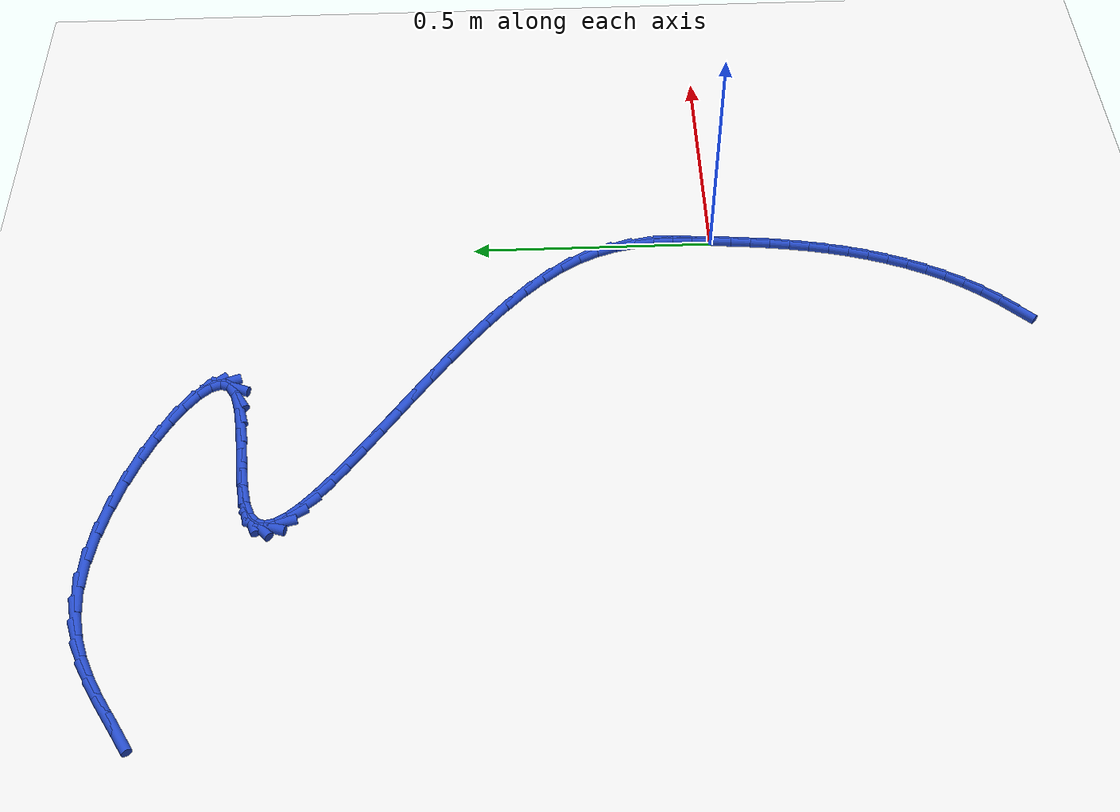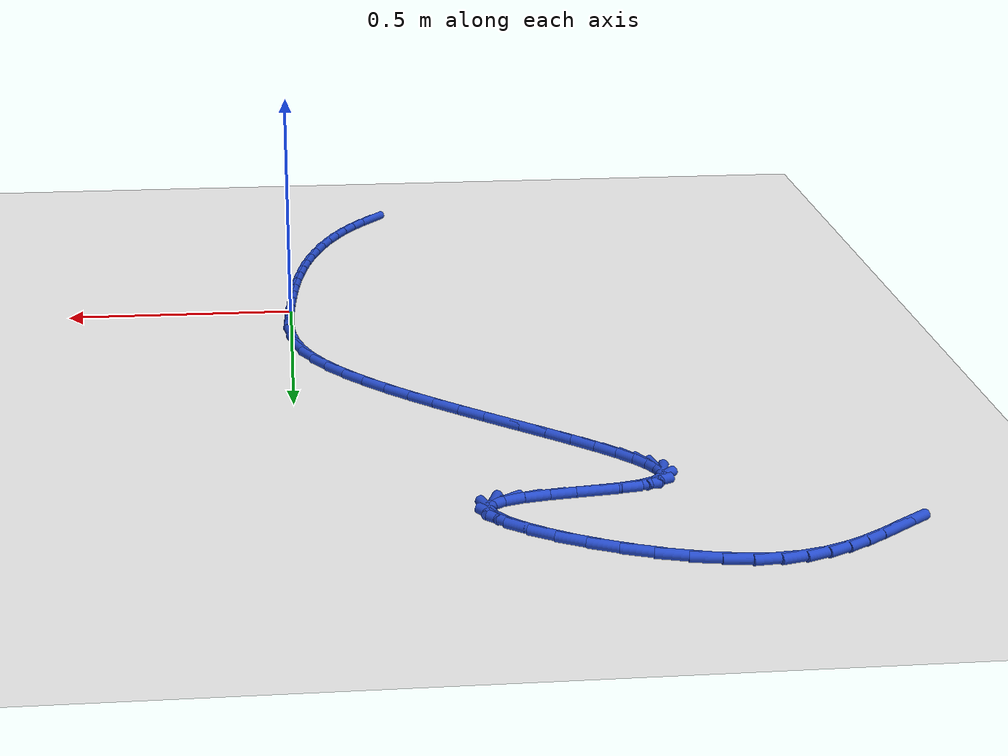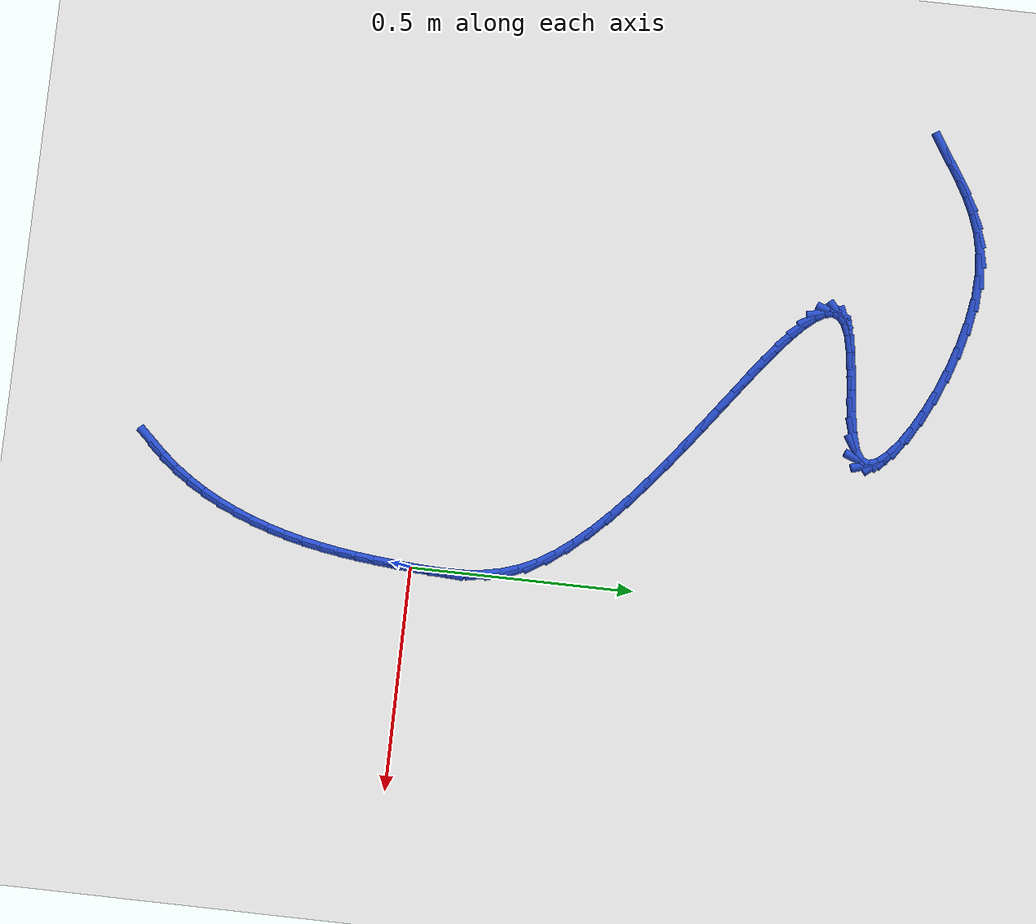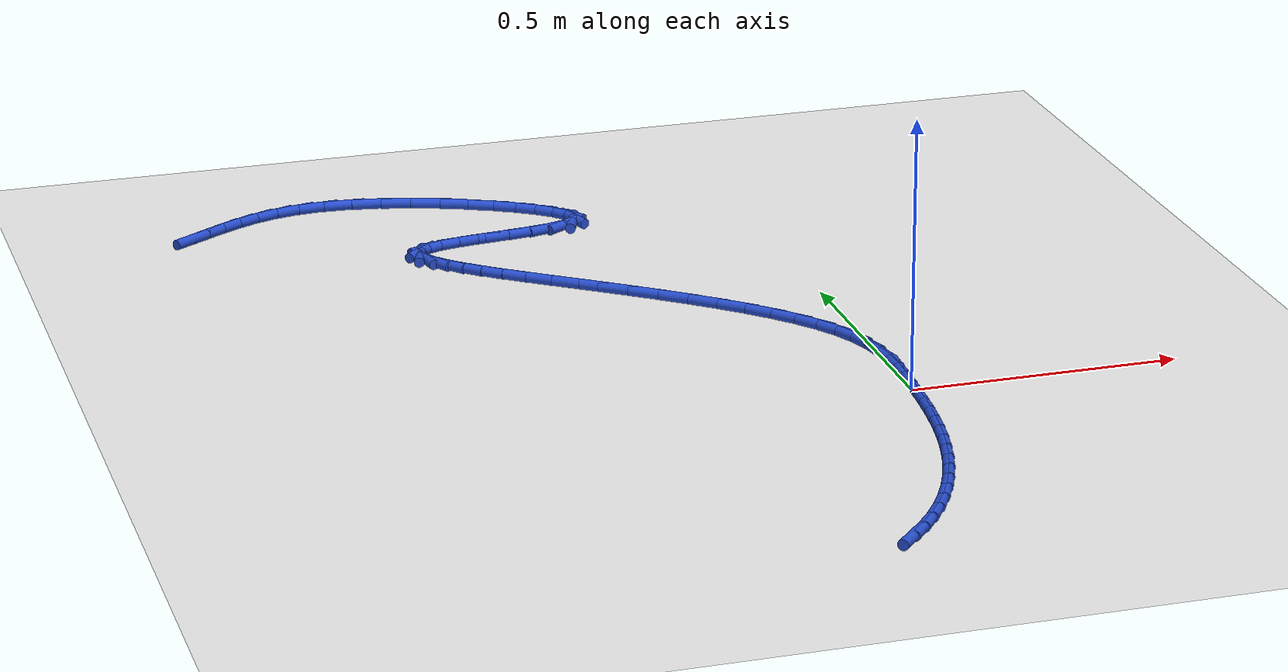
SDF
<sdf version="1.6">
 <world name="default">
  <model name="ground_plane">
   <static>1</static>
   <link name="link">
    <collision name="collision">
     <geometry><plane><normal>0 0 1</normal><size>100 100</size></plane></geometry>
     <surface><friction><ode><mu>100</mu><mu2>50</mu2></ode></friction></surface>
    </collision>
    <visual name="visual">
     <cast_shadows>0</cast_shadows>
     <geometry><plane><normal>0 0 1</normal><size>100 100</size></plane></geometry>
     <material>
      <script><uri>file://media/materials/scripts/gazebo.material</uri><name>Gazebo/WhiteGlow</name></script>
     </material>
    </visual>
   </link>
  </model>
  <model name="line">
   <link name="link_0">
    <pose>-2.6454533008646308e-17 4.85722573273506e-17 0.01 0 1.57 1.509269195185731</pose>
    <collision name="collision">
     <geometry><cylinder><radius>0.01</radius><length>0.08</length></cylinder></geometry>
    </collision>
    <visual name="visual">
     <material>
      <script><name>Gazebo/Blue</name><uri>file://media/materials/scripts/gazebo.material</uri></script>
     </material>
     <geometry><cylinder><radius>0.01</radius><length>0.08</length></cylinder></geometry>
    </visual>
   </link>
   <link name="link_1">
    <pose>0.0025201213532394574 0.04090781477339782 0.01 0 1.57 1.5417251489490051</pose>
    <collision name="collision">
     <geometry><cylinder><radius>0.01</radius><length>0.08</length></cylinder></geometry>
    </collision>
    <visual name="visual">
     <material>
      <script><name>Gazebo/Blue</name><uri>file://media/materials/scripts/gazebo.material</uri></script>
     </material>
     <geometry><cylinder><radius>0.01</radius><length>0.08</length></cylinder></geometry>
    </visual>
   </link>
   <link name="link_2">
    <pose>0.00370807624145367 0.08175996791085728 0.01 0 1.57 -1.5446514620259824</pose>
    <collision name="collision">
     <geometry><cylinder><radius>0.01</radius><length>0.08</length></cylinder></geometry>
    </collision>
    <visual name="visual">
     <material>
      <script><name>Gazebo/Blue</name><uri>file://media/materials/scripts/gazebo.material</uri></script>
     </material>
     <geometry><cylinder><radius>0.01</radius><length>0.08</length></cylinder></geometry>
    </visual>
   </link>
   <link name="link_3">
    <pose>0.002640877953900527 0.12256932467615686 0.01 0 1.57 -1.4670650868832078</pose>
    <collision name="collision">
     <geometry><cylinder><radius>0.01</radius><length>0.08</length></cylinder></geometry>
    </collision>
    <visual name="visual">
     <material>
      <script><name>Gazebo/Blue</name><uri>file://media/materials/scripts/gazebo.material</uri></script>
     </material>
     <geometry><cylinder><radius>0.01</radius><length>0.08</length></cylinder></geometry>
    </visual>
   </link>
   <link name="link_4">
    <pose>-0.0016044602201620434 0.16334875033307514 0.01 0 1.57 -1.3688289097441755</pose>
    <collision name="collision">
     <geometry><cylinder><radius>0.01</radius><length>0.08</length></cylinder></geometry>
    </collision>
    <visual name="visual">
     <material>
      <script><name>Gazebo/Blue</name><uri>file://media/materials/scripts/gazebo.material</uri></script>
     </material>
     <geometry><cylinder><radius>0.01</radius><length>0.08</length></cylinder></geometry>
    </visual>
   </link>
   <link name="link_5">
    <pose>-0.00995092499147613 0.2041111101453905 0.01 0 1.57 -1.253811298840657</pose>
    <collision name="collision">
     <geometry><cylinder><radius>0.01</radius><length>0.08</length></cylinder></geometry>
    </collision>
    <visual name="visual">
     <material>
      <script><name>Gazebo/Blue</name><uri>file://media/materials/scripts/gazebo.material</uri></script>
     </material>
     <geometry><cylinder><radius>0.01</radius><length>0.08</length></cylinder></geometry>
    </visual>
   </link>
   <link name="link_6">
    <pose>-0.023321503070783803 0.24486926937688142 0.01 0 1.57 -1.1282854065230519</pose>
    <collision name="collision">
     <geometry><cylinder><radius>0.01</radius><length>0.08</length></cylinder></geometry>
    </collision>
    <visual name="visual">
     <material>
      <script><name>Gazebo/Blue</name><uri>file://media/materials/scripts/gazebo.material</uri></script>
     </material>
     <geometry><cylinder><radius>0.01</radius><length>0.08</length></cylinder></geometry>
    </visual>
   </link>
   <link name="link_7">
    <pose>-0.04263891654962168 0.2856360703587166 0.01 0 1.57 -1.0065701139669982</pose>
    <collision name="collision">
     <geometry><cylinder><radius>0.01</radius><length>0.08</length></cylinder></geometry>
    </collision>
    <visual name="visual">
     <material>
      <script><name>Gazebo/Blue</name><uri>file://media/materials/scripts/gazebo.material</uri></script>
     </material>
     <geometry><cylinder><radius>0.01</radius><length>0.08</length></cylinder></geometry>
    </visual>
   </link>
   <link name="link_8">
    <pose>-0.06843018685082376 0.3263900629412451 0.01 0 1.57 -0.9095853364182266</pose>
    <collision name="collision">
     <geometry><cylinder><radius>0.01</radius><length>0.08</length></cylinder></geometry>
    </collision>
    <visual name="visual">
     <material>
      <script><name>Gazebo/Blue</name><uri>file://media/materials/scripts/gazebo.material</uri></script>
     </material>
     <geometry><cylinder><radius>0.01</radius><length>0.08</length></cylinder></geometry>
    </visual>
   </link>
   <link name="link_9">
    <pose>-0.10003178403023383 0.3670066206014952 0.01 0 1.57 -0.8349249566194558</pose>
    <collision name="collision">
     <geometry><cylinder><radius>0.01</radius><length>0.08</length></cylinder></geometry>
    </collision>
    <visual name="visual">
     <material>
      <script><name>Gazebo/Blue</name><uri>file://media/materials/scripts/gazebo.material</uri></script>
     </material>
     <geometry><cylinder><radius>0.01</radius><length>0.08</length></cylinder></geometry>
    </visual>
   </link>
   <link name="link_10">
    <pose>-0.1365571817886406 0.4073417913545149 0.01 0 1.57 -0.7772857545090989</pose>
    <collision name="collision">
     <geometry><cylinder><radius>0.01</radius><length>0.08</length></cylinder></geometry>
    </collision>
    <visual name="visual">
     <material>
      <script><name>Gazebo/Blue</name><uri>file://media/materials/scripts/gazebo.material</uri></script>
     </material>
     <geometry><cylinder><radius>0.01</radius><length>0.08</length></cylinder></geometry>
    </visual>
   </link>
   <link name="link_11">
    <pose>-0.1771198538268327 0.4472516232153523 0.01 0 1.57 -0.7327956751561371</pose>
    <collision name="collision">
     <geometry><cylinder><radius>0.01</radius><length>0.08</length></cylinder></geometry>
    </collision>
    <visual name="visual">
     <material>
      <script><name>Gazebo/Blue</name><uri>file://media/materials/scripts/gazebo.material</uri></script>
     </material>
     <geometry><cylinder><radius>0.01</radius><length>0.08</length></cylinder></geometry>
    </visual>
   </link>
   <link name="link_12">
    <pose>-0.22083327384559892 0.4865921641990554 0.01 0 1.57 -0.6987373398845259</pose>
    <collision name="collision">
     <geometry><cylinder><radius>0.01</radius><length>0.08</length></cylinder></geometry>
    </collision>
    <visual name="visual">
     <material>
      <script><name>Gazebo/Blue</name><uri>file://media/materials/scripts/gazebo.material</uri></script>
     </material>
     <geometry><cylinder><radius>0.01</radius><length>0.08</length></cylinder></geometry>
    </visual>
   </link>
   <link name="link_13">
    <pose>-0.2668109155457279 0.5252194623206721 0.01 0 1.57 -0.6732691848513949</pose>
    <collision name="collision">
     <geometry><cylinder><radius>0.01</radius><length>0.08</length></cylinder></geometry>
    </collision>
    <visual name="visual">
     <material>
      <script><name>Gazebo/Blue</name><uri>file://media/materials/scripts/gazebo.material</uri></script>
     </material>
     <geometry><cylinder><radius>0.01</radius><length>0.08</length></cylinder></geometry>
    </visual>
   </link>
   <link name="link_14">
    <pose>-0.3141662526280081 0.5629895655952504 0.01 0 1.57 -0.6552221184754208</pose>
    <collision name="collision">
     <geometry><cylinder><radius>0.01</radius><length>0.08</length></cylinder></geometry>
    </collision>
    <visual name="visual">
     <material>
      <script><name>Gazebo/Blue</name><uri>file://media/materials/scripts/gazebo.material</uri></script>
     </material>
     <geometry><cylinder><radius>0.01</radius><length>0.08</length></cylinder></geometry>
    </visual>
   </link>
   <link name="link_15">
    <pose>-0.3620127587932287 0.5997585220378386 0.01 0 1.57 -0.6439796900205215</pose>
    <collision name="collision">
     <geometry><cylinder><radius>0.01</radius><length>0.08</length></cylinder></geometry>
    </collision>
    <visual name="visual">
     <material>
      <script><name>Gazebo/Blue</name><uri>file://media/materials/scripts/gazebo.material</uri></script>
     </material>
     <geometry><cylinder><radius>0.01</radius><length>0.08</length></cylinder></geometry>
    </visual>
   </link>
   <link name="link_16">
    <pose>-0.4094639077421781 0.6353823796634845 0.01 0 1.57 -0.6394391074112148</pose>
    <collision name="collision">
     <geometry><cylinder><radius>0.01</radius><length>0.08</length></cylinder></geometry>
    </collision>
    <visual name="visual">
     <material>
      <script><name>Gazebo/Blue</name><uri>file://media/materials/scripts/gazebo.material</uri></script>
     </material>
     <geometry><cylinder><radius>0.01</radius><length>0.08</length></cylinder></geometry>
    </visual>
   </link>
   <link name="link_17">
    <pose>-0.45563317317564506 0.6697171864872364 0.01 0 1.57 -0.6420619470846901</pose>
    <collision name="collision">
     <geometry><cylinder><radius>0.01</radius><length>0.08</length></cylinder></geometry>
    </collision>
    <visual name="visual">
     <material>
      <script><name>Gazebo/Blue</name><uri>file://media/materials/scripts/gazebo.material</uri></script>
     </material>
     <geometry><cylinder><radius>0.01</radius><length>0.08</length></cylinder></geometry>
    </visual>
   </link>
   <link name="link_18">
    <pose>-0.4996340287944181 0.702618990524142 0.01 0 1.57 -0.6530510027040978</pose>
    <collision name="collision">
     <geometry><cylinder><radius>0.01</radius><length>0.08</length></cylinder></geometry>
    </collision>
    <visual name="visual">
     <material>
      <script><name>Gazebo/Blue</name><uri>file://media/materials/scripts/gazebo.material</uri></script>
     </material>
     <geometry><cylinder><radius>0.01</radius><length>0.08</length></cylinder></geometry>
    </visual>
   </link>
   <link name="link_19">
    <pose>-0.5405799482992861 0.7339438397892496 0.01 0 1.57 -0.6747471516450356</pose>
    <collision name="collision">
     <geometry><cylinder><radius>0.01</radius><length>0.08</length></cylinder></geometry>
    </collision>
    <visual name="visual">
     <material>
      <script><name>Gazebo/Blue</name><uri>file://media/materials/scripts/gazebo.material</uri></script>
     </material>
     <geometry><cylinder><radius>0.01</radius><length>0.08</length></cylinder></geometry>
    </visual>
   </link>
   <link name="link_20">
    <pose>-0.5775844053910376 0.7635477822976069 0.01 0 1.57 -0.7114724786341811</pose>
    <collision name="collision">
     <geometry><cylinder><radius>0.01</radius><length>0.08</length></cylinder></geometry>
    </collision>
    <visual name="visual">
     <material>
      <script><name>Gazebo/Blue</name><uri>file://media/materials/scripts/gazebo.material</uri></script>
     </material>
     <geometry><cylinder><radius>0.01</radius><length>0.08</length></cylinder></geometry>
    </visual>
   </link>
   <link name="link_21">
    <pose>-0.6097608737704615 0.791286866064262 0.01 0 1.57 -0.7713801294628543</pose>
    <collision name="collision">
     <geometry><cylinder><radius>0.01</radius><length>0.08</length></cylinder></geometry>
    </collision>
    <visual name="visual">
     <material>
      <script><name>Gazebo/Blue</name><uri>file://media/materials/scripts/gazebo.material</uri></script>
     </material>
     <geometry><cylinder><radius>0.01</radius><length>0.08</length></cylinder></geometry>
    </visual>
   </link>
   <link name="link_22">
    <pose>-0.6362228271383463 0.8170171391042631 0.01 0 1.57 -0.8707504512054686</pose>
    <collision name="collision">
     <geometry><cylinder><radius>0.01</radius><length>0.08</length></cylinder></geometry>
    </collision>
    <visual name="visual">
     <material>
      <script><name>Gazebo/Blue</name><uri>file://media/materials/scripts/gazebo.material</uri></script>
     </material>
     <geometry><cylinder><radius>0.01</radius><length>0.08</length></cylinder></geometry>
    </visual>
   </link>
   <link name="link_23">
    <pose>-0.6560837391954809 0.8405946494326584 0.01 0 1.57 -1.0441413518200124</pose>
    <collision name="collision">
     <geometry><cylinder><radius>0.01</radius><length>0.08</length></cylinder></geometry>
    </collision>
    <visual name="visual">
     <material>
      <script><name>Gazebo/Blue</name><uri>file://media/materials/scripts/gazebo.material</uri></script>
     </material>
     <geometry><cylinder><radius>0.01</radius><length>0.08</length></cylinder></geometry>
    </visual>
   </link>
   <link name="link_24">
    <pose>-0.6684570836426538 0.8618754450644954 0.01 0 1.57 -1.3616281441238216</pose>
    <collision name="collision">
     <geometry><cylinder><radius>0.01</radius><length>0.08</length></cylinder></geometry>
    </collision>
    <visual name="visual">
     <material>
      <script><name>Gazebo/Blue</name><uri>file://media/materials/scripts/gazebo.material</uri></script>
     </material>
     <geometry><cylinder><radius>0.01</radius><length>0.08</length></cylinder></geometry>
    </visual>
   </link>
   <link name="link_25">
    <pose>-0.6724563341806539 0.8807155740148225 0.01 0 1.57 1.2577706961210036</pose>
    <collision name="collision">
     <geometry><cylinder><radius>0.01</radius><length>0.08</length></cylinder></geometry>
    </collision>
    <visual name="visual">
     <material>
      <script><name>Gazebo/Blue</name><uri>file://media/materials/scripts/gazebo.material</uri></script>
     </material>
     <geometry><cylinder><radius>0.01</radius><length>0.08</length></cylinder></geometry>
    </visual>
   </link>
   <link name="link_26">
    <pose>-0.6671949645102694 0.8969710842986875 0.01 0 1.57 0.7204629087555768</pose>
    <collision name="collision">
     <geometry><cylinder><radius>0.01</radius><length>0.08</length></cylinder></geometry>
    </collision>
    <visual name="visual">
     <material>
      <script><name>Gazebo/Blue</name><uri>file://media/materials/scripts/gazebo.material</uri></script>
     </material>
     <geometry><cylinder><radius>0.01</radius><length>0.08</length></cylinder></geometry>
    </visual>
   </link>
   <link name="link_27">
    <pose>-0.6517864483322895 0.9104980239311387 0.01 0 1.57 0.38303491947691204</pose>
    <collision name="collision">
     <geometry><cylinder><radius>0.01</radius><length>0.08</length></cylinder></geometry>
    </collision>
    <visual name="visual">
     <material>
      <script><name>Gazebo/Blue</name><uri>file://media/materials/scripts/gazebo.material</uri></script>
     </material>
     <geometry><cylinder><radius>0.01</radius><length>0.08</length></cylinder></geometry>
    </visual>
   </link>
   <link name="link_28">
    <pose>-0.6253444046064736 0.9211524775095848 0.01 0 1.57 0.20779085892381952</pose>
    <collision name="collision">
     <geometry><cylinder><radius>0.01</radius><length>0.08</length></cylinder></geometry>
    </collision>
    <visual name="visual">
     <material>
      <script><name>Gazebo/Blue</name><uri>file://media/materials/scripts/gazebo.material</uri></script>
     </material>
     <geometry><cylinder><radius>0.01</radius><length>0.08</length></cylinder></geometry>
    </visual>
   </link>
   <link name="link_29">
    <pose>-0.5879549521777492 0.9290354462904789 0.01 0 1.57 0.13356316622591824</pose>
    <collision name="collision">
     <geometry><cylinder><radius>0.01</radius><length>0.08</length></cylinder></geometry>
    </collision>
    <visual name="visual">
     <material>
      <script><name>Gazebo/Blue</name><uri>file://media/materials/scripts/gazebo.material</uri></script>
     </material>
     <geometry><cylinder><radius>0.01</radius><length>0.08</length></cylinder></geometry>
    </visual>
   </link>
   <link name="link_30">
    <pose>-0.5429942558055588 0.935076504433749 0.01 0 1.57 0.10901081676127165</pose>
    <collision name="collision">
     <geometry><cylinder><radius>0.01</radius><length>0.08</length></cylinder></geometry>
    </collision>
    <visual name="visual">
     <material>
      <script><name>Gazebo/Blue</name><uri>file://media/materials/scripts/gazebo.material</uri></script>
     </material>
     <geometry><cylinder><radius>0.01</radius><length>0.08</length></cylinder></geometry>
    </visual>
   </link>
   <link name="link_31">
    <pose>-0.49453354161133917 0.9403802719879729 0.01 0 1.57 0.11787151251198527</pose>
    <collision name="collision">
     <geometry><cylinder><radius>0.01</radius><length>0.08</length></cylinder></geometry>
    </collision>
    <visual name="visual">
     <material>
      <script><name>Gazebo/Blue</name><uri>file://media/materials/scripts/gazebo.material</uri></script>
     </material>
     <geometry><cylinder><radius>0.01</radius><length>0.08</length></cylinder></geometry>
    </visual>
   </link>
   <link name="link_32">
    <pose>-0.4466440357165279 0.946051369001728 0.01 0 1.57 0.163690481918927</pose>
    <collision name="collision">
     <geometry><cylinder><radius>0.01</radius><length>0.08</length></cylinder></geometry>
    </collision>
    <visual name="visual">
     <material>
      <script><name>Gazebo/Blue</name><uri>file://media/materials/scripts/gazebo.material</uri></script>
     </material>
     <geometry><cylinder><radius>0.01</radius><length>0.08</length></cylinder></geometry>
    </visual>
   </link>
   <link name="link_33">
    <pose>-0.4033969642425618 0.9531944155235916 0.01 0 1.57 0.274357813742018</pose>
    <collision name="collision">
     <geometry><cylinder><radius>0.01</radius><length>0.08</length></cylinder></geometry>
    </collision>
    <visual name="visual">
     <material>
      <script><name>Gazebo/Blue</name><uri>file://media/materials/scripts/gazebo.material</uri></script>
     </material>
     <geometry><cylinder><radius>0.01</radius><length>0.08</length></cylinder></geometry>
    </visual>
   </link>
   <link name="link_34">
    <pose>-0.36886355331087833 0.9629140316021412 0.01 0 1.57 0.5518086828791245</pose>
    <collision name="collision">
     <geometry><cylinder><radius>0.01</radius><length>0.08</length></cylinder></geometry>
    </collision>
    <visual name="visual">
     <material>
      <script><name>Gazebo/Blue</name><uri>file://media/materials/scripts/gazebo.material</uri></script>
     </material>
     <geometry><cylinder><radius>0.01</radius><length>0.08</length></cylinder></geometry>
    </visual>
   </link>
   <link name="link_35">
    <pose>-0.34710216236399644 0.9763102686144918 0.01 0 1.57 1.205866641085095</pose>
    <collision name="collision">
     <geometry><cylinder><radius>0.01</radius><length>0.08</length></cylinder></geometry>
    </collision>
    <visual name="visual">
     <material>
      <script><name>Gazebo/Blue</name><uri>file://media/materials/scripts/gazebo.material</uri></script>
     </material>
     <geometry><cylinder><radius>0.01</radius><length>0.08</length></cylinder></geometry>
    </visual>
   </link>
   <link name="link_36">
    <pose>-0.3403996668560106 0.9938541633804235 0.01 0 1.57 -1.2441025698154802</pose>
    <collision name="collision">
     <geometry><cylinder><radius>0.01</radius><length>0.08</length></cylinder></geometry>
    </collision>
    <visual name="visual">
     <material>
      <script><name>Gazebo/Blue</name><uri>file://media/materials/scripts/gazebo.material</uri></script>
     </material>
     <geometry><cylinder><radius>0.01</radius><length>0.08</length></cylinder></geometry>
    </visual>
   </link>
   <link name="link_37">
    <pose>-0.3474805207233217 1.0147518160854392 0.01 0 1.57 -0.8826733075945599</pose>
    <collision name="collision">
     <geometry><cylinder><radius>0.01</radius><length>0.08</length></cylinder></geometry>
    </collision>
    <visual name="visual">
     <material>
      <script><name>Gazebo/Blue</name><uri>file://media/materials/scripts/gazebo.material</uri></script>
     </material>
     <geometry><cylinder><radius>0.01</radius><length>0.08</length></cylinder></geometry>
    </visual>
   </link>
   <link name="link_38">
    <pose>-0.3666423310184498 1.0380577630818557 0.01 0 1.57 -0.6977633048910638</pose>
    <collision name="collision">
     <geometry><cylinder><radius>0.01</radius><length>0.08</length></cylinder></geometry>
    </collision>
    <visual name="visual">
     <material>
      <script><name>Gazebo/Blue</name><uri>file://media/materials/scripts/gazebo.material</uri></script>
     </material>
     <geometry><cylinder><radius>0.01</radius><length>0.08</length></cylinder></geometry>
    </visual>
   </link>
   <link name="link_39">
    <pose>-0.3961827047939155 1.0628265407219906 0.01 0 1.57 -0.584524539721005</pose>
    <collision name="collision">
     <geometry><cylinder><radius>0.01</radius><length>0.08</length></cylinder></geometry>
    </collision>
    <visual name="visual">
     <material>
      <script><name>Gazebo/Blue</name><uri>file://media/materials/scripts/gazebo.material</uri></script>
     </material>
     <geometry><cylinder><radius>0.01</radius><length>0.08</length></cylinder></geometry>
    </visual>
   </link>
   <link name="link_40">
    <pose>-0.4343992491022391 1.0881126853581606 0.01 0 1.57 -0.5029004792633465</pose>
    <collision name="collision">
     <geometry><cylinder><radius>0.01</radius><length>0.08</length></cylinder></geometry>
    </collision>
    <visual name="visual">
     <material>
      <script><name>Gazebo/Blue</name><uri>file://media/materials/scripts/gazebo.material</uri></script>
     </material>
     <geometry><cylinder><radius>0.01</radius><length>0.08</length></cylinder></geometry>
    </visual>
   </link>
   <link name="link_41">
    <pose>-0.4795895709959406 1.1129707333426824 0.01 0 1.57 -0.4355801476792492</pose>
    <collision name="collision">
     <geometry><cylinder><radius>0.01</radius><length>0.08</length></cylinder></geometry>
    </collision>
    <visual name="visual">
     <material>
      <script><name>Gazebo/Blue</name><uri>file://media/materials/scripts/gazebo.material</uri></script>
     </material>
     <geometry><cylinder><radius>0.01</radius><length>0.08</length></cylinder></geometry>
    </visual>
   </link>
   <link name="link_42">
    <pose>-0.5300512775275408 1.136455221027873 0.01 0 1.57 -0.373357093637007</pose>
    <collision name="collision">
     <geometry><cylinder><radius>0.01</radius><length>0.08</length></cylinder></geometry>
    </collision>
    <visual name="visual">
     <material>
      <script><name>Gazebo/Blue</name><uri>file://media/materials/scripts/gazebo.material</uri></script>
     </material>
     <geometry><cylinder><radius>0.01</radius><length>0.08</length></cylinder></geometry>
    </visual>
   </link>
   <link name="link_43">
    <pose>-0.5840819757495601 1.1576206847660502 0.01 0 1.57 -0.30992754458472</pose>
    <collision name="collision">
     <geometry><cylinder><radius>0.01</radius><length>0.08</length></cylinder></geometry>
    </collision>
    <visual name="visual">
     <material>
      <script><name>Gazebo/Blue</name><uri>file://media/materials/scripts/gazebo.material</uri></script>
     </material>
     <geometry><cylinder><radius>0.01</radius><length>0.08</length></cylinder></geometry>
    </visual>
   </link>
   <link name="link_44">
    <pose>-0.6399792727145184 1.1755216609095298 0.01 0 1.57 -0.23952600085875478</pose>
    <collision name="collision">
     <geometry><cylinder><radius>0.01</radius><length>0.08</length></cylinder></geometry>
    </collision>
    <visual name="visual">
     <material>
      <script><name>Gazebo/Blue</name><uri>file://media/materials/scripts/gazebo.material</uri></script>
     </material>
     <geometry><cylinder><radius>0.01</radius><length>0.08</length></cylinder></geometry>
    </visual>
   </link>
   <link name="link_45">
    <pose>-0.6960407754749363 1.1892126858106289 0.01 0 1.57 -0.15528930946947003</pose>
    <collision name="collision">
     <geometry><cylinder><radius>0.01</radius><length>0.08</length></cylinder></geometry>
    </collision>
    <visual name="visual">
     <material>
      <script><name>Gazebo/Blue</name><uri>file://media/materials/scripts/gazebo.material</uri></script>
     </material>
     <geometry><cylinder><radius>0.01</radius><length>0.08</length></cylinder></geometry>
    </visual>
   </link>
   <link name="link_46">
    <pose>-0.750564091083334 1.197748295821665 0.01 0 1.57 -0.047489943298552544</pose>
    <collision name="collision">
     <geometry><cylinder><radius>0.01</radius><length>0.08</length></cylinder></geometry>
    </collision>
    <visual name="visual">
     <material>
      <script><name>Gazebo/Blue</name><uri>file://media/materials/scripts/gazebo.material</uri></script>
     </material>
     <geometry><cylinder><radius>0.01</radius><length>0.08</length></cylinder></geometry>
    </visual>
   </link>
   <link name="link_47">
    <pose>-0.8018499429143217 1.2001856906405788 0.01 0 1.57 0.08569642645641715</pose>
    <collision name="collision">
     <geometry><cylinder><radius>0.01</radius><length>0.08</length></cylinder></geometry>
    </collision>
    <visual name="visual">
     <material>
      <script><name>Gazebo/Blue</name><uri>file://media/materials/scripts/gazebo.material</uri></script>
     </material>
     <geometry><cylinder><radius>0.01</radius><length>0.08</length></cylinder></geometry>
    </visual>
   </link>
   <link name="link_48">
    <pose>-0.8488602793259842 1.1961471818554312 0.01 0 1.57 0.21948933627469472</pose>
    <collision name="collision">
     <geometry><cylinder><radius>0.01</radius><length>0.08</length></cylinder></geometry>
    </collision>
    <visual name="visual">
     <material>
      <script><name>Gazebo/Blue</name><uri>file://media/materials/scripts/gazebo.material</uri></script>
     </material>
     <geometry><cylinder><radius>0.01</radius><length>0.08</length></cylinder></geometry>
    </visual>
   </link>
   <link name="link_49">
    <pose>-0.8920326063614578 1.1865161574098626 0.01 0 1.57 0.3406687532184814</pose>
    <collision name="collision">
     <geometry><cylinder><radius>0.01</radius><length>0.08</length></cylinder></geometry>
    </collision>
    <visual name="visual">
     <material>
      <script><name>Gazebo/Blue</name><uri>file://media/materials/scripts/gazebo.material</uri></script>
     </material>
     <geometry><cylinder><radius>0.01</radius><length>0.08</length></cylinder></geometry>
    </visual>
   </link>
   <link name="link_50">
    <pose>-0.9320041256906857 1.1723466738942439 0.01 0 1.57 0.44093984602337905</pose>
    <collision name="collision">
     <geometry><cylinder><radius>0.01</radius><length>0.08</length></cylinder></geometry>
    </collision>
    <visual name="visual">
     <material>
      <script><name>Gazebo/Blue</name><uri>file://media/materials/scripts/gazebo.material</uri></script>
     </material>
     <geometry><cylinder><radius>0.01</radius><length>0.08</length></cylinder></geometry>
    </visual>
   </link>
   <link name="link_51">
    <pose>-0.9694120389836114 1.154692787898946 0.01 0 1.57 0.5150804778031776</pose>
    <collision name="collision">
     <geometry><cylinder><radius>0.01</radius><length>0.08</length></cylinder></geometry>
    </collision>
    <visual name="visual">
     <material>
      <script><name>Gazebo/Blue</name><uri>file://media/materials/scripts/gazebo.material</uri></script>
     </material>
     <geometry><cylinder><radius>0.01</radius><length>0.08</length></cylinder></geometry>
    </visual>
   </link>
   <link name="link_52">
    <pose>-1.0048935479101777 1.134608556014339 0.01 0 1.57 0.560496793148033</pose>
    <collision name="collision">
     <geometry><cylinder><radius>0.01</radius><length>0.08</length></cylinder></geometry>
    </collision>
    <visual name="visual">
     <material>
      <script><name>Gazebo/Blue</name><uri>file://media/materials/scripts/gazebo.material</uri></script>
     </material>
     <geometry><cylinder><radius>0.01</radius><length>0.08</length></cylinder></geometry>
    </visual>
   </link>
   <link name="link_53">
    <pose>-1.0390858541403287 1.1131480348307945 0.01 0 1.57 0.5759885363308357</pose>
    <collision name="collision">
     <geometry><cylinder><radius>0.01</radius><length>0.08</length></cylinder></geometry>
    </collision>
    <visual name="visual">
     <material>
      <script><name>Gazebo/Blue</name><uri>file://media/materials/scripts/gazebo.material</uri></script>
     </material>
     <geometry><cylinder><radius>0.01</radius><length>0.08</length></cylinder></geometry>
    </visual>
   </link>
   <link name="link_54">
    <pose>-1.0726261593440072 1.0913652809386825 0.01 0 1.57 0.560687657962343</pose>
    <collision name="collision">
     <geometry><cylinder><radius>0.01</radius><length>0.08</length></cylinder></geometry>
    </collision>
    <visual name="visual">
     <material>
      <script><name>Gazebo/Blue</name><uri>file://media/materials/scripts/gazebo.material</uri></script>
     </material>
     <geometry><cylinder><radius>0.01</radius><length>0.08</length></cylinder></geometry>
    </visual>
   </link>
   <link name="link_204">
    <pose>-0.21725173131792191 -0.6080913980263991 0.01 0 1.57 0.8168419111187502</pose>
    <collision name="collision">
     <geometry><cylinder><radius>0.01</radius><length>0.08</length></cylinder></geometry>
    </collision>
    <visual name="visual">
     <material>
      <script><name>Gazebo/Blue</name><uri>file://media/materials/scripts/gazebo.material</uri></script>
     </material>
     <geometry><cylinder><radius>0.01</radius><length>0.08</length></cylinder></geometry>
    </visual>
   </link>
   <link name="link_205">
    <pose>-0.18933754237896197 -0.5783641486742517 0.01 0 1.57 0.8827103938797783</pose>
    <collision name="collision">
     <geometry><cylinder><radius>0.01</radius><length>0.08</length></cylinder></geometry>
    </collision>
    <visual name="visual">
     <material>
      <script><name>Gazebo/Blue</name><uri>file://media/materials/scripts/gazebo.material</uri></script>
     </material>
     <geometry><cylinder><radius>0.01</radius><length>0.08</length></cylinder></geometry>
    </visual>
   </link>
   <link name="link_206">
    <pose>-0.1634545677874536 -0.5468810669644538 0.01 0 1.57 0.953279028827243</pose>
    <collision name="collision">
     <geometry><cylinder><radius>0.01</radius><length>0.08</length></cylinder></geometry>
    </collision>
    <visual name="visual">
     <material>
      <script><name>Gazebo/Blue</name><uri>file://media/materials/scripts/gazebo.material</uri></script>
     </material>
     <geometry><cylinder><radius>0.01</radius><length>0.08</length></cylinder></geometry>
    </visual>
   </link>
   <link name="link_207">
    <pose>-0.1397719507980157 -0.5135331394073241 0.01 0 1.57 1.0213619777562088</pose>
    <collision name="collision">
     <geometry><cylinder><radius>0.01</radius><length>0.08</length></cylinder></geometry>
    </collision>
    <visual name="visual">
     <material>
      <script><name>Gazebo/Blue</name><uri>file://media/materials/scripts/gazebo.material</uri></script>
     </material>
     <geometry><cylinder><radius>0.01</radius><length>0.08</length></cylinder></geometry>
    </visual>
   </link>
   <link name="link_208">
    <pose>-0.1182928709452788 -0.47845535798984 0.01 0 1.57 1.0841836523848796</pose>
    <collision name="collision">
     <geometry><cylinder><radius>0.01</radius><length>0.08</length></cylinder></geometry>
    </collision>
    <visual name="visual">
     <material>
      <script><name>Gazebo/Blue</name><uri>file://media/materials/scripts/gazebo.material</uri></script>
     </material>
     <geometry><cylinder><radius>0.01</radius><length>0.08</length></cylinder></geometry>
    </visual>
   </link>
   <link name="link_209">
    <pose>-0.09894788315586332 -0.44188948985498877 0.01 0 1.57 1.1421215175214625</pose>
    <collision name="collision">
     <geometry><cylinder><radius>0.01</radius><length>0.08</length></cylinder></geometry>
    </collision>
    <visual name="visual">
     <material>
      <script><name>Gazebo/Blue</name><uri>file://media/materials/scripts/gazebo.material</uri></script>
     </material>
     <geometry><cylinder><radius>0.01</radius><length>0.08</length></cylinder></geometry>
    </visual>
   </link>
   <link name="link_210">
    <pose>-0.08166723587407113 -0.404077752746434 0.01 0 1.57 1.1956337228087275</pose>
    <collision name="collision">
     <geometry><cylinder><radius>0.01</radius><length>0.08</length></cylinder></geometry>
    </collision>
    <visual name="visual">
     <material>
      <script><name>Gazebo/Blue</name><uri>file://media/materials/scripts/gazebo.material</uri></script>
     </material>
     <geometry><cylinder><radius>0.01</radius><length>0.08</length></cylinder></geometry>
    </visual>
   </link>
   <link name="link_211">
    <pose>-0.06638117754420401 -0.3652623644078395 0.01 0 1.57 1.245208752049982</pose>
    <collision name="collision">
     <geometry><cylinder><radius>0.01</radius><length>0.08</length></cylinder></geometry>
    </collision>
    <visual name="visual">
     <material>
      <script><name>Gazebo/Blue</name><uri>file://media/materials/scripts/gazebo.material</uri></script>
     </material>
     <geometry><cylinder><radius>0.01</radius><length>0.08</length></cylinder></geometry>
    </visual>
   </link>
   <link name="link_212">
    <pose>-0.05301995661056355 -0.3256855425828679 0.01 0 1.57 1.2913412900145769</pose>
    <collision name="collision">
     <geometry><cylinder><radius>0.01</radius><length>0.08</length></cylinder></geometry>
    </collision>
    <visual name="visual">
     <material>
      <script><name>Gazebo/Blue</name><uri>file://media/materials/scripts/gazebo.material</uri></script>
     </material>
     <geometry><cylinder><radius>0.01</radius><length>0.08</length></cylinder></geometry>
    </visual>
   </link>
   <link name="link_213">
    <pose>-0.04151382151745217 -0.2855895050151846 0.01 0 1.57 1.3342840278045727</pose>
    <collision name="collision">
     <geometry><cylinder><radius>0.01</radius><length>0.08</length></cylinder></geometry>
    </collision>
    <visual name="visual">
     <material>
      <script><name>Gazebo/Blue</name><uri>file://media/materials/scripts/gazebo.material</uri></script>
     </material>
     <geometry><cylinder><radius>0.01</radius><length>0.08</length></cylinder></geometry>
    </visual>
   </link>
   <link name="link_214">
    <pose>-0.03177717252382448 -0.24519237304967917 0.01 0 1.57 1.3730308555170445</pose>
    <collision name="collision">
     <geometry><cylinder><radius>0.01</radius><length>0.08</length></cylinder></geometry>
    </collision>
    <visual name="visual">
     <material>
      <script><name>Gazebo/Blue</name><uri>file://media/materials/scripts/gazebo.material</uri></script>
     </material>
     <geometry><cylinder><radius>0.01</radius><length>0.08</length></cylinder></geometry>
    </visual>
   </link>
   <link name="link_215">
    <pose>-0.023639798287139285 -0.20458362018633916 0.01 0 1.57 1.4070601039464843</pose>
    <collision name="collision">
     <geometry><cylinder><radius>0.01</radius><length>0.08</length></cylinder></geometry>
    </collision>
    <visual name="visual">
     <material>
      <script><name>Gazebo/Blue</name><uri>file://media/materials/scripts/gazebo.material</uri></script>
     </material>
     <geometry><cylinder><radius>0.01</radius><length>0.08</length></cylinder></geometry>
    </visual>
   </link>
   <link name="link_216">
    <pose>-0.01690336531219522 -0.16380996155313413 0.01 0 1.57 1.4362848120545948</pose>
    <collision name="collision">
     <geometry><cylinder><radius>0.01</radius><length>0.08</length></cylinder></geometry>
    </collision>
    <visual name="visual">
     <material>
      <script><name>Gazebo/Blue</name><uri>file://media/materials/scripts/gazebo.material</uri></script>
     </material>
     <geometry><cylinder><radius>0.01</radius><length>0.08</length></cylinder></geometry>
    </visual>
   </link>
   <link name="link_217">
    <pose>-0.011369521297500988 -0.12291808368398219 0.01 0 1.57 1.4606668231714917</pose>
    <collision name="collision">
     <geometry><cylinder><radius>0.01</radius><length>0.08</length></cylinder></geometry>
    </collision>
    <visual name="visual">
     <material>
      <script><name>Gazebo/Blue</name><uri>file://media/materials/scripts/gazebo.material</uri></script>
     </material>
     <geometry><cylinder><radius>0.01</radius><length>0.08</length></cylinder></geometry>
    </visual>
   </link>
   <link name="link_218">
    <pose>-0.006839913941564799 -0.08195467311279855 0.01 0 1.57 1.4801965013658365</pose>
    <collision name="collision">
     <geometry><cylinder><radius>0.01</radius><length>0.08</length></cylinder></geometry>
    </collision>
    <visual name="visual">
     <material>
      <script><name>Gazebo/Blue</name><uri>file://media/materials/scripts/gazebo.material</uri></script>
     </material>
     <geometry><cylinder><radius>0.01</radius><length>0.08</length></cylinder></geometry>
    </visual>
   </link>
   <link name="link_219">
    <pose>-0.0031161909428950385 -0.04096641637349939 0.01 0 1.57 1.494875567437804</pose>
    <collision name="collision">
     <geometry><cylinder><radius>0.01</radius><length>0.08</length></cylinder></geometry>
    </collision>
    <visual name="visual">
     <material>
      <script><name>Gazebo/Blue</name><uri>file://media/materials/scripts/gazebo.material</uri></script>
     </material>
     <geometry><cylinder><radius>0.01</radius><length>0.08</length></cylinder></geometry>
    </visual>
   </link>
   <link name="link_220">
    <pose>-1.5178830414797062e-17 1.8041124150158794e-16 0.01 0 1.57 1.5047032252250163</pose>
    <collision name="collision">
     <geometry><cylinder><radius>0.01</radius><length>0.08</length></cylinder></geometry>
    </collision>
    <visual name="visual">
     <material>
      <script><name>Gazebo/Blue</name><uri>file://media/materials/scripts/gazebo.material</uri></script>
     </material>
     <geometry><cylinder><radius>0.01</radius><length>0.08</length></cylinder></geometry>
    </visual>
   </link>
   <link name="link_221">
    <pose>0.002707011188611673 0.040897889473780924 0.01 0 1.57 1.5096656256933216</pose>
    <collision name="collision">
     <geometry><cylinder><radius>0.01</radius><length>0.08</length></cylinder></geometry>
    </collision>
    <visual name="visual">
     <material>
      <script><name>Gazebo/Blue</name><uri>file://media/materials/scripts/gazebo.material</uri></script>
     </material>
     <geometry><cylinder><radius>0.01</radius><length>0.08</length></cylinder></geometry>
    </visual>
   </link>
   <link name="link_222">
    <pose>0.005203194924431915 0.08168056551393073 0.01 0 1.57 1.5071805334808053</pose>
    <collision name="collision">
     <geometry><cylinder><radius>0.01</radius><length>0.08</length></cylinder></geometry>
    </collision>
    <visual name="visual">
     <material>
      <script><name>Gazebo/Blue</name><uri>file://media/materials/scripts/gazebo.material</uri></script>
     </material>
     <geometry><cylinder><radius>0.01</radius><length>0.08</length></cylinder></geometry>
    </visual>
   </link>
  </model>
 </world>
</sdf>
